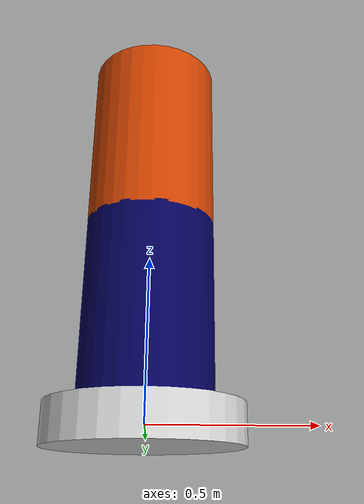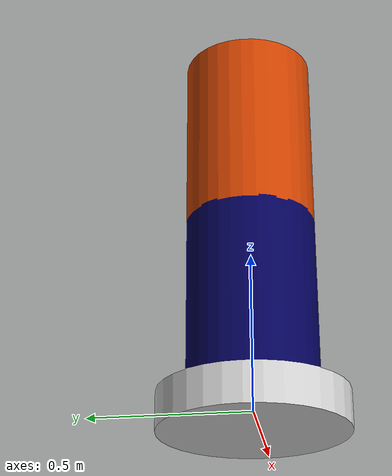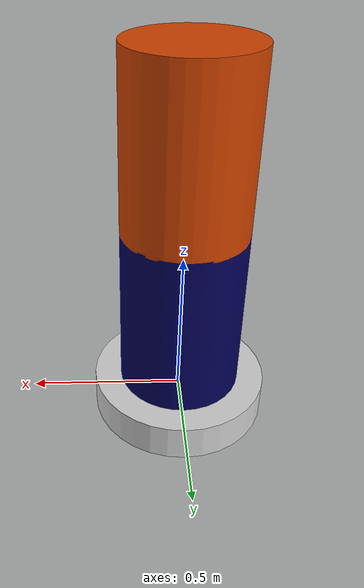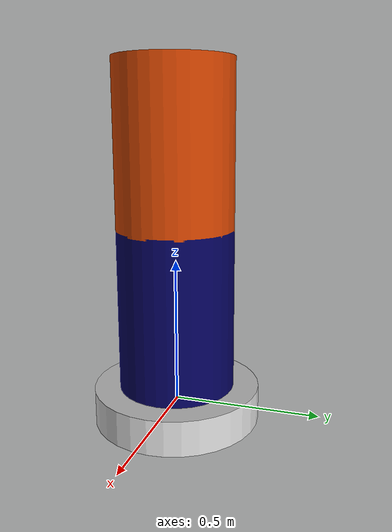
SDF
<?xml version="1.0" ?>
<sdf version="1.6">
  <model name="pill_buoy">
    <link name="buoyl">
      <pose>0 0 0 0 0 0</pose>
      <velocity_decay>
        <linear>0.001</linear>
        <angular>0.001</angular>
      </velocity_decay>
      <inertial>
        <pose>0 0 -10 0 0 0</pose>
        <mass>10</mass>
        <inertia>
          <ixx>10</ixx>
          <ixy>0</ixy>
          <ixz>0</ixz>
          <iyy>10</iyy>
          <iyz>0</iyz>
          <izz>10</izz>
        </inertia>
      </inertial>
      <collision name="buoyc">
        <geometry>
	  <mesh><uri>model://pill_buoy/mesh/pill_buoy.dae</uri></mesh>
          <cylinder>
            <radius>0.25</radius>
            <length>1.0</length>
          </cylinder>
        </geometry>
      </collision>
      <visual name="buoyv">
        <geometry>
	<mesh><uri>model://pill_buoy/mesh/pill_buoy.dae</uri></mesh>
        </geometry>
      </visual>
    </link>
  </model>
</sdf>
